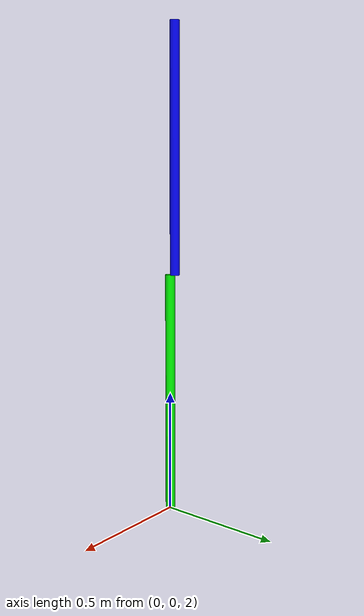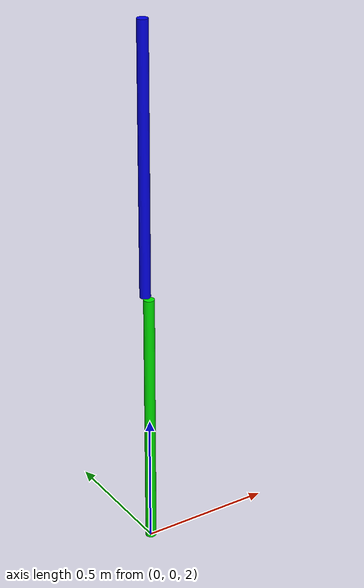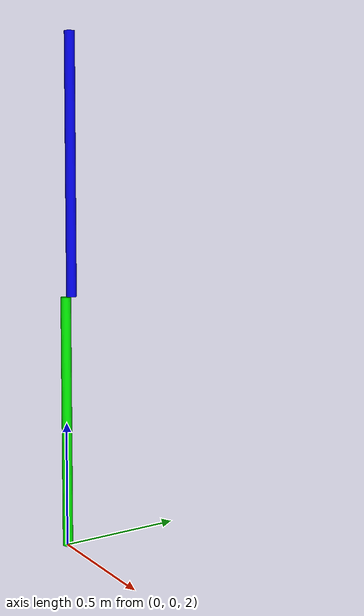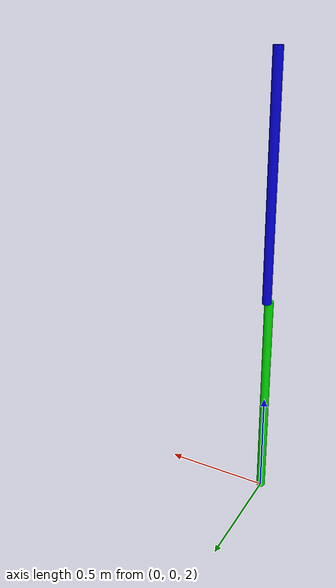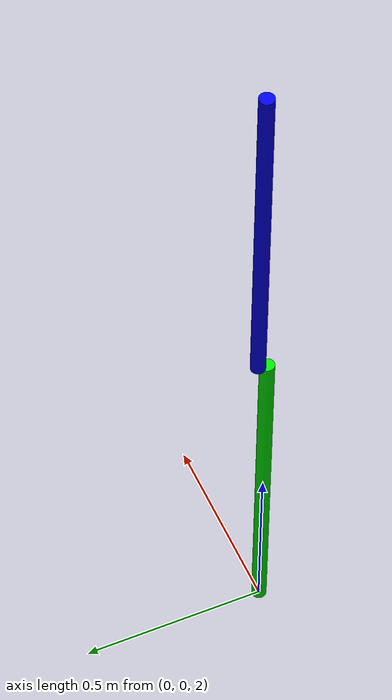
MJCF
<mujoco>
	<option timestep="0.000001" integrator="RK4">
		<flag sensornoise="enable" energy="enable" contact="disable"/>
	</option>
	<worldbody>
        <light diffuse=".5 .5 .5" pos="0 0 3" dir="0 0 -1"/>
		<geom type="plane" size="2 2 0.1" rgba=".9 0 0 1"/>
		<body pos="0 0 2.5" euler="0 0 0">
			<joint name="j1" type="hinge" axis = "0 -1 0" pos="0 0 -0.5"/>
			<geom type="cylinder" size="0.02 0.5" rgba="0 .9 0 1" mass="2"/>
			<body pos="0 0.025 1" euler="0 0 0">
				<joint name="j2" type="hinge" axis = "0 -1 0" pos="0 0 -0.5"/>
				<geom type="cylinder" size="0.02 0.5" rgba="0 0 .9 1" mass="2"/>
		    </body>
		</body>
	</worldbody>
</mujoco>
